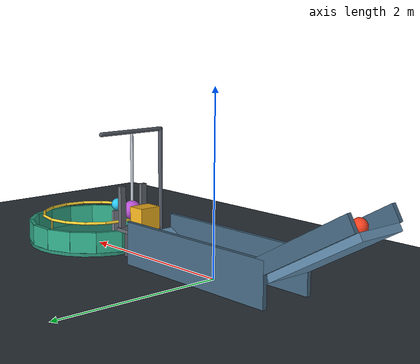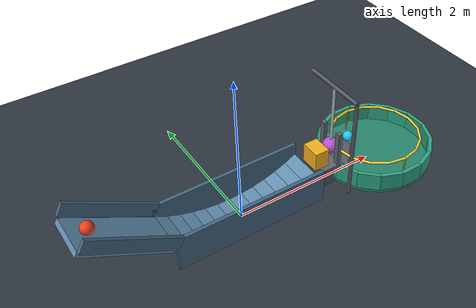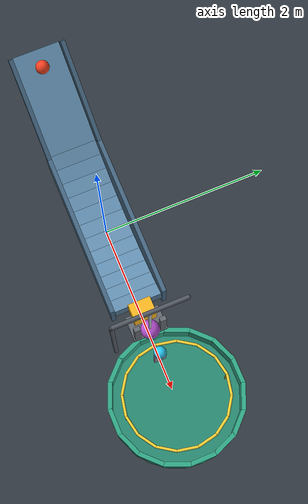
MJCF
<mujoco model="halfpipe_chain_reaction">
  <compiler angle="degree" inertiafromgeom="true"/>
  <option timestep="0.002" gravity="0 0 -9.81" integrator="implicitfast" solver="Newton" iterations="80"/>
  <size njmax="3000" nconmax="600"/>
  <visual>
    <headlight ambient="0.45 0.45 0.45" diffuse="0.75 0.75 0.75" specular="0.15 0.15 0.15"/>
    <global azimuth="135" elevation="-22"/>
  </visual>

  <worldbody>
    <light name="scene_light" pos="0 -3 5" dir="0 0.4 -1"/>
    <camera name="overview" pos="3.6 -6 3.3" xyaxes="0.93 0.37 0 -0.15 0.38 0.91"/>
    <geom name="floor" type="plane" size="7 5 0.1" rgba="0.18 0.21 0.24 1" friction="0.8 0.01 0.002" solref="0.015 1"/>

    <!-- The ball's starting contact point is 1 m up the 30-degree ramp. -->
    <body name="ramp">
      <geom name="ramp_surface" type="box" pos="-1.539615 0 0.593308" quat="0.965926 0 0.258819 0" size="0.6 0.28 0.04" rgba="0.38 0.55 0.68 1" friction="0.35 0.003 0.0001" solref="0.006 1"/>
      <geom name="ramp_left_rail" type="box" pos="-1.474615 -0.31 0.705891" quat="0.965926 0 0.258819 0" size="0.6 0.025 0.09" rgba="0.26 0.39 0.49 1" friction="0.35 0.003 0.0001"/>
      <geom name="ramp_right_rail" type="box" pos="-1.474615 0.31 0.705891" quat="0.965926 0 0.258819 0" size="0.6 0.025 0.09" rgba="0.26 0.39 0.49 1" friction="0.35 0.003 0.0001"/>
    </body>

    <!-- Chords approximate a circular trough of radius 2 m. -->
    <body name="halfpipe">
      <geom name="halfpipe_01" type="box" pos="-0.938781 0 0.256623" quat="0.971342 0 0.237686 0" size="0.0875 0.28 0.035" rgba="0.38 0.55 0.68 1" friction="0.35 0.003 0.0001" solref="0.006 1"/>
      <geom name="halfpipe_02" type="box" pos="-0.778032 0 0.181666" quat="0.980785 0 0.195090 0" size="0.0875 0.28 0.035" rgba="0.38 0.55 0.68 1" friction="0.35 0.003 0.0001" solref="0.006 1"/>
      <geom name="halfpipe_03" type="box" pos="-0.611360 0 0.121005" quat="0.988362 0 0.152123 0" size="0.0875 0.28 0.035" rgba="0.38 0.55 0.68 1" friction="0.35 0.003 0.0001" solref="0.006 1"/>
      <geom name="halfpipe_04" type="box" pos="-0.440044 0 0.075096" quat="0.994056 0 0.108867 0" size="0.0875 0.28 0.035" rgba="0.38 0.55 0.68 1" friction="0.35 0.003 0.0001" solref="0.006 1"/>
      <geom name="halfpipe_05" type="box" pos="-0.265374 0 0.044297" quat="0.997859 0 0.065403 0" size="0.0875 0.28 0.035" rgba="0.38 0.55 0.68 1" friction="0.35 0.003 0.0001" solref="0.006 1"/>
      <geom name="halfpipe_06" type="box" pos="-0.088683 0 0.028839" quat="0.999762 0 0.021815 0" size="0.0875 0.28 0.035" rgba="0.38 0.55 0.68 1" friction="0.35 0.003 0.0001" solref="0.006 1"/>
      <geom name="halfpipe_07" type="box" pos="0.088683 0 0.028839" quat="0.999762 0 -0.021815 0" size="0.0875 0.28 0.035" rgba="0.38 0.55 0.68 1" friction="0.35 0.003 0.0001" solref="0.006 1"/>
      <geom name="halfpipe_08" type="box" pos="0.265374 0 0.044297" quat="0.997859 0 -0.065403 0" size="0.0875 0.28 0.035" rgba="0.38 0.55 0.68 1" friction="0.35 0.003 0.0001" solref="0.006 1"/>
      <geom name="halfpipe_09" type="box" pos="0.440044 0 0.075096" quat="0.994056 0 -0.108867 0" size="0.0875 0.28 0.035" rgba="0.38 0.55 0.68 1" friction="0.35 0.003 0.0001" solref="0.006 1"/>
      <geom name="halfpipe_10" type="box" pos="0.611360 0 0.121005" quat="0.988362 0 -0.152123 0" size="0.0875 0.28 0.035" rgba="0.38 0.55 0.68 1" friction="0.35 0.003 0.0001" solref="0.006 1"/>
      <geom name="halfpipe_11" type="box" pos="0.778032 0 0.181666" quat="0.980785 0 -0.195090 0" size="0.0875 0.28 0.035" rgba="0.38 0.55 0.68 1" friction="0.35 0.003 0.0001" solref="0.006 1"/>
      <geom name="halfpipe_12" type="box" pos="0.938781 0 0.256623" quat="0.971342 0 -0.237686 0" size="0.0875 0.28 0.035" rgba="0.38 0.55 0.68 1" friction="0.35 0.003 0.0001" solref="0.006 1"/>
      <geom name="halfpipe_left_rail" type="box" pos="0 -0.31 0.24" size="1.02 0.025 0.24" rgba="0.26 0.39 0.49 1"/>
      <geom name="halfpipe_right_rail" type="box" pos="0 0.31 0.24" size="1.02 0.025 0.24" rgba="0.26 0.39 0.49 1"/>
    </body>

    <body name="ball1" pos="-1.825775 0 0.897664">
      <freejoint name="ball1_free"/>
      <geom name="ball1_sphere" type="sphere" size="0.08" mass="2" rgba="0.95 0.25 0.12 1" friction="0.35 0.003 0.0001" solref="0.006 1"/>
    </body>

    <body name="striker_table">
      <geom name="striker_table_top" type="box" pos="1.2475 0 0.307949" size="0.1425 0.20 0.02" rgba="0.38 0.40 0.43 1" friction="0.06 0.002 0.0001" solref="0.006 1"/>
      <geom name="striker_table_leg" type="box" pos="1.2475 0 0.145" size="0.07 0.15 0.145" rgba="0.30 0.32 0.35 1"/>
      <geom name="striker_table_stop_left" type="box" pos="1.355 -0.15 0.565" size="0.025 0.035 0.235" rgba="0.38 0.40 0.43 1" solref="0.008 1"/>
      <geom name="striker_table_stop_right" type="box" pos="1.355 0.15 0.565" size="0.025 0.035 0.235" rgba="0.38 0.40 0.43 1" solref="0.008 1"/>
    </body>

    <body name="block" pos="1.13 0 0.457949">
      <freejoint name="block_free"/>
      <geom name="block_box" type="box" size="0.10 0.13 0.13" mass="0.55" rgba="0.95 0.70 0.12 1" friction="0.06 0.002 0.0001" solref="0.006 1"/>
    </body>

    <body name="pendulum_support">
      <geom name="pendulum_support_post" type="capsule" fromto="1.36 -0.42 0.03 1.36 -0.42 1.41" size="0.025" rgba="0.32 0.34 0.38 1"/>
      <geom name="pendulum_support_crossbar" type="capsule" fromto="1.36 -0.42 1.41 1.36 0.42 1.41" size="0.025" rgba="0.32 0.34 0.38 1"/>
    </body>

    <body name="pendulum" pos="1.36 0 1.41">
      <joint name="pendulum_hinge" type="hinge" axis="0 1 0" limited="true" range="-65 20" damping="0.025" armature="0.001"/>
      <geom name="pendulum_arm" type="capsule" fromto="0 0 -0.035 0 0 -0.79" size="0.018" mass="0.04" rgba="0.72 0.75 0.79 1" friction="0.2 0.003 0.0001" solref="0.006 1"/>
      <geom name="pendulum_bob" type="sphere" pos="0 0 -0.9" size="0.11" mass="0.60" rgba="0.72 0.32 0.82 1" friction="0.2 0.003 0.0001" solref="0.006 1"/>
    </body>

    <body name="ball2_pedestal">
      <geom name="ball2_pedestal_stem" type="box" pos="1.64 0 0.23" size="0.018 0.07 0.23" rgba="0.48 0.50 0.54 1" friction="0.25 0.003 0.0001" solref="0.006 1"/>
    </body>

    <body name="ball2" pos="1.64 0 0.53">
      <freejoint name="ball2_free"/>
      <geom name="ball2_sphere" type="sphere" size="0.07" mass="0.10" rgba="0.16 0.78 0.95 1" friction="0.35 0.005 0.0002" solref="0.008 1"/>
    </body>

    <!-- Horizontal drop hoop, centered over the catching cup. -->
    <body name="hoop" pos="2.12 0 0.35">
      <geom name="hoop_01" type="capsule" fromto="0.6 0 0 0.554328 0.229610 0" size="0.016" rgba="0.98 0.82 0.20 1"/>
      <geom name="hoop_02" type="capsule" fromto="0.554328 0.229610 0 0.424264 0.424264 0" size="0.016" rgba="0.98 0.82 0.20 1"/>
      <geom name="hoop_03" type="capsule" fromto="0.424264 0.424264 0 0.229610 0.554328 0" size="0.016" rgba="0.98 0.82 0.20 1"/>
      <geom name="hoop_04" type="capsule" fromto="0.229610 0.554328 0 0 0.6 0" size="0.016" rgba="0.98 0.82 0.20 1"/>
      <geom name="hoop_05" type="capsule" fromto="0 0.6 0 -0.229610 0.554328 0" size="0.016" rgba="0.98 0.82 0.20 1"/>
      <geom name="hoop_06" type="capsule" fromto="-0.229610 0.554328 0 -0.424264 0.424264 0" size="0.016" rgba="0.98 0.82 0.20 1"/>
      <geom name="hoop_07" type="capsule" fromto="-0.424264 0.424264 0 -0.554328 0.229610 0" size="0.016" rgba="0.98 0.82 0.20 1"/>
      <geom name="hoop_08" type="capsule" fromto="-0.554328 0.229610 0 -0.6 0 0" size="0.016" rgba="0.98 0.82 0.20 1"/>
      <geom name="hoop_09" type="capsule" fromto="-0.6 0 0 -0.554328 -0.229610 0" size="0.016" rgba="0.98 0.82 0.20 1"/>
      <geom name="hoop_10" type="capsule" fromto="-0.554328 -0.229610 0 -0.424264 -0.424264 0" size="0.016" rgba="0.98 0.82 0.20 1"/>
      <geom name="hoop_11" type="capsule" fromto="-0.424264 -0.424264 0 -0.229610 -0.554328 0" size="0.016" rgba="0.98 0.82 0.20 1"/>
      <geom name="hoop_12" type="capsule" fromto="-0.229610 -0.554328 0 0 -0.6 0" size="0.016" rgba="0.98 0.82 0.20 1"/>
      <geom name="hoop_13" type="capsule" fromto="0 -0.6 0 0.229610 -0.554328 0" size="0.016" rgba="0.98 0.82 0.20 1"/>
      <geom name="hoop_14" type="capsule" fromto="0.229610 -0.554328 0 0.424264 -0.424264 0" size="0.016" rgba="0.98 0.82 0.20 1"/>
      <geom name="hoop_15" type="capsule" fromto="0.424264 -0.424264 0 0.554328 -0.229610 0" size="0.016" rgba="0.98 0.82 0.20 1"/>
      <geom name="hoop_16" type="capsule" fromto="0.554328 -0.229610 0 0.6 0 0" size="0.016" rgba="0.98 0.82 0.20 1"/>
      <geom name="hoop_support_left" type="capsule" fromto="0 -0.6 -0.32 0 -0.6 0" size="0.012" rgba="0.65 0.57 0.20 1"/>
      <geom name="hoop_support_right" type="capsule" fromto="0 0.6 -0.32 0 0.6 0" size="0.012" rgba="0.65 0.57 0.20 1"/>
    </body>

    <!-- Dissipative bottom and overlapping wall panels retain ball2. -->
    <body name="cup" pos="2.12 0 0">
      <geom name="cup_bottom" type="cylinder" pos="0 0 0.025" size="0.77 0.02" rgba="0.15 0.52 0.43 1" friction="1 0.02 0.005" solref="0.02 1" condim="6"/>
      <geom name="cup_wall_01" type="box" pos="0.735 0 0.165" size="0.025 0.15 0.12" euler="0 0 0" rgba="0.18 0.64 0.51 1" friction="1 0.02 0.005" solref="0.02 1" condim="6"/>
      <geom name="cup_wall_02" type="box" pos="0.679052 0.281272 0.165" size="0.025 0.15 0.12" euler="0 0 22.5" rgba="0.18 0.64 0.51 1" friction="1 0.02 0.005" solref="0.02 1" condim="6"/>
      <geom name="cup_wall_03" type="box" pos="0.519723 0.519723 0.165" size="0.025 0.15 0.12" euler="0 0 45" rgba="0.18 0.64 0.51 1" friction="1 0.02 0.005" solref="0.02 1" condim="6"/>
      <geom name="cup_wall_04" type="box" pos="0.281272 0.679052 0.165" size="0.025 0.15 0.12" euler="0 0 67.5" rgba="0.18 0.64 0.51 1" friction="1 0.02 0.005" solref="0.02 1" condim="6"/>
      <geom name="cup_wall_05" type="box" pos="0 0.735 0.165" size="0.025 0.15 0.12" euler="0 0 90" rgba="0.18 0.64 0.51 1" friction="1 0.02 0.005" solref="0.02 1" condim="6"/>
      <geom name="cup_wall_06" type="box" pos="-0.281272 0.679052 0.165" size="0.025 0.15 0.12" euler="0 0 112.5" rgba="0.18 0.64 0.51 1" friction="1 0.02 0.005" solref="0.02 1" condim="6"/>
      <geom name="cup_wall_07" type="box" pos="-0.519723 0.519723 0.165" size="0.025 0.15 0.12" euler="0 0 135" rgba="0.18 0.64 0.51 1" friction="1 0.02 0.005" solref="0.02 1" condim="6"/>
      <geom name="cup_wall_08" type="box" pos="-0.679052 0.281272 0.165" size="0.025 0.15 0.12" euler="0 0 157.5" rgba="0.18 0.64 0.51 1" friction="1 0.02 0.005" solref="0.02 1" condim="6"/>
      <geom name="cup_wall_09" type="box" pos="-0.735 0 0.165" size="0.025 0.15 0.12" euler="0 0 180" rgba="0.18 0.64 0.51 1" friction="1 0.02 0.005" solref="0.02 1" condim="6"/>
      <geom name="cup_wall_10" type="box" pos="-0.679052 -0.281272 0.165" size="0.025 0.15 0.12" euler="0 0 202.5" rgba="0.18 0.64 0.51 1" friction="1 0.02 0.005" solref="0.02 1" condim="6"/>
      <geom name="cup_wall_11" type="box" pos="-0.519723 -0.519723 0.165" size="0.025 0.15 0.12" euler="0 0 225" rgba="0.18 0.64 0.51 1" friction="1 0.02 0.005" solref="0.02 1" condim="6"/>
      <geom name="cup_wall_12" type="box" pos="-0.281272 -0.679052 0.165" size="0.025 0.15 0.12" euler="0 0 247.5" rgba="0.18 0.64 0.51 1" friction="1 0.02 0.005" solref="0.02 1" condim="6"/>
      <geom name="cup_wall_13" type="box" pos="0 -0.735 0.165" size="0.025 0.15 0.12" euler="0 0 270" rgba="0.18 0.64 0.51 1" friction="1 0.02 0.005" solref="0.02 1" condim="6"/>
      <geom name="cup_wall_14" type="box" pos="0.281272 -0.679052 0.165" size="0.025 0.15 0.12" euler="0 0 292.5" rgba="0.18 0.64 0.51 1" friction="1 0.02 0.005" solref="0.02 1" condim="6"/>
      <geom name="cup_wall_15" type="box" pos="0.519723 -0.519723 0.165" size="0.025 0.15 0.12" euler="0 0 315" rgba="0.18 0.64 0.51 1" friction="1 0.02 0.005" solref="0.02 1" condim="6"/>
      <geom name="cup_wall_16" type="box" pos="0.679052 -0.281272 0.165" size="0.025 0.15 0.12" euler="0 0 337.5" rgba="0.18 0.64 0.51 1" friction="1 0.02 0.005" solref="0.02 1" condim="6"/>
    </body>
  </worldbody>

  <keyframe>
    <key name="start"/>
  </keyframe>
</mujoco>
